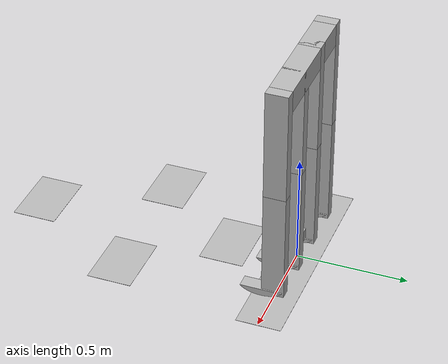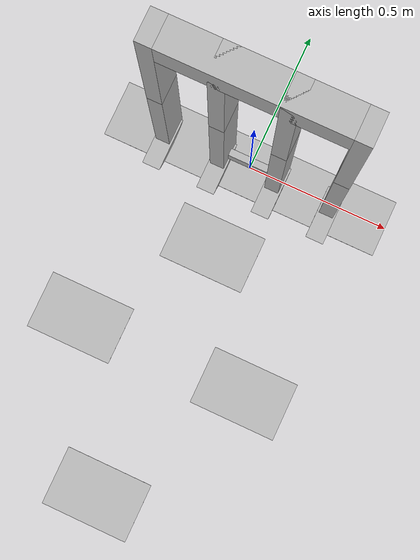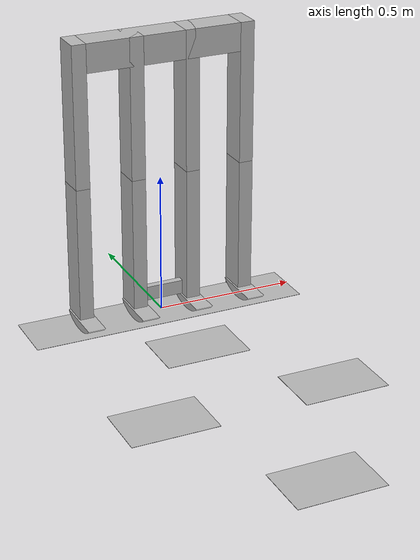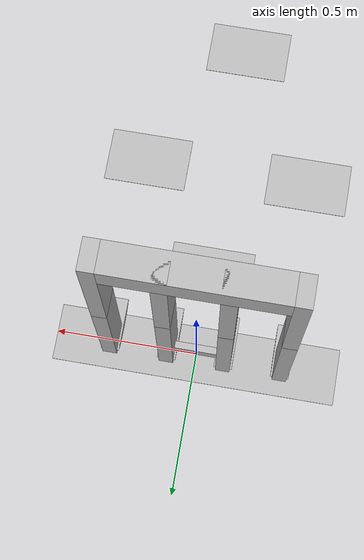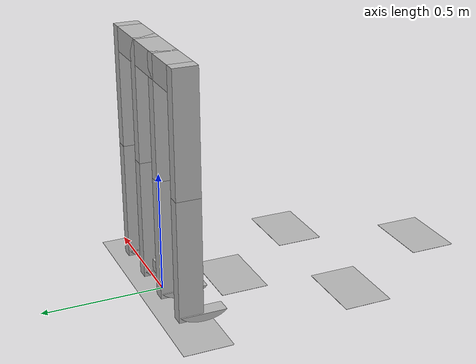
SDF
<?xml version="1.0" ?>
<sdf version="1.3">
  <world name="default">
    <physics type="ode">
      <gravity>0 -.4 -9.81</gravity>
      <real_time_update_rate>1000</real_time_update_rate>
      <ode>
        <solver>
          <type>quick</type>
          <dt>0.001</dt>
          <iters>10000</iters>
          <sor>1.0</sor>
        </solver>
        <constraints>
          <cfm>0.0</cfm>
          <erp>0.2</erp>
          <contact_max_correcting_vel>100.0</contact_max_correcting_vel>
          <contact_surface_layer>0.0</contact_surface_layer>
        </constraints>
      </ode>
    </physics>
    <include>
      <uri>model://sun</uri>
    </include>
    <include>
      <uri>model://checkerboard</uri>
    </include>
    <include>
      <uri>model://passive_dynamic_walker</uri>
    </include>
  </world>
</sdf>
